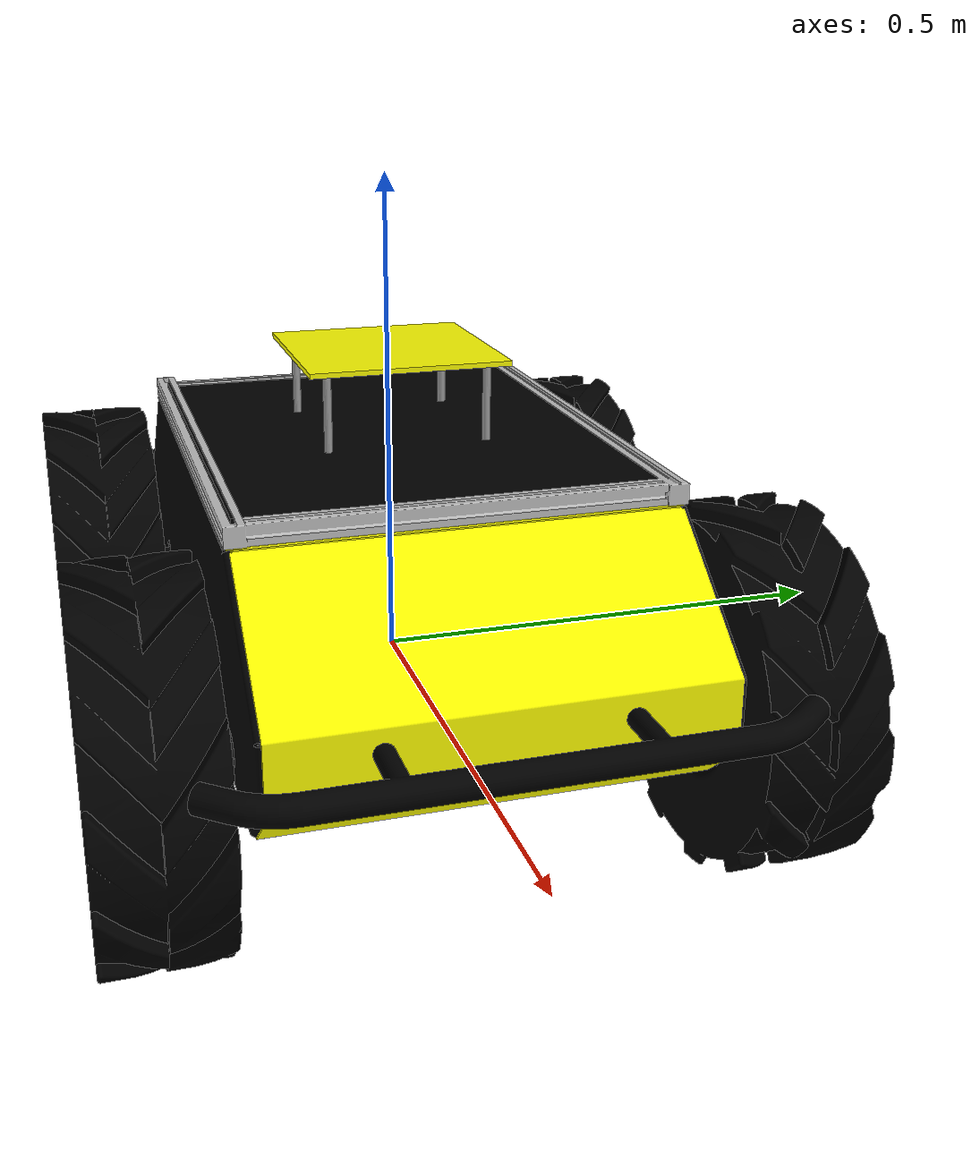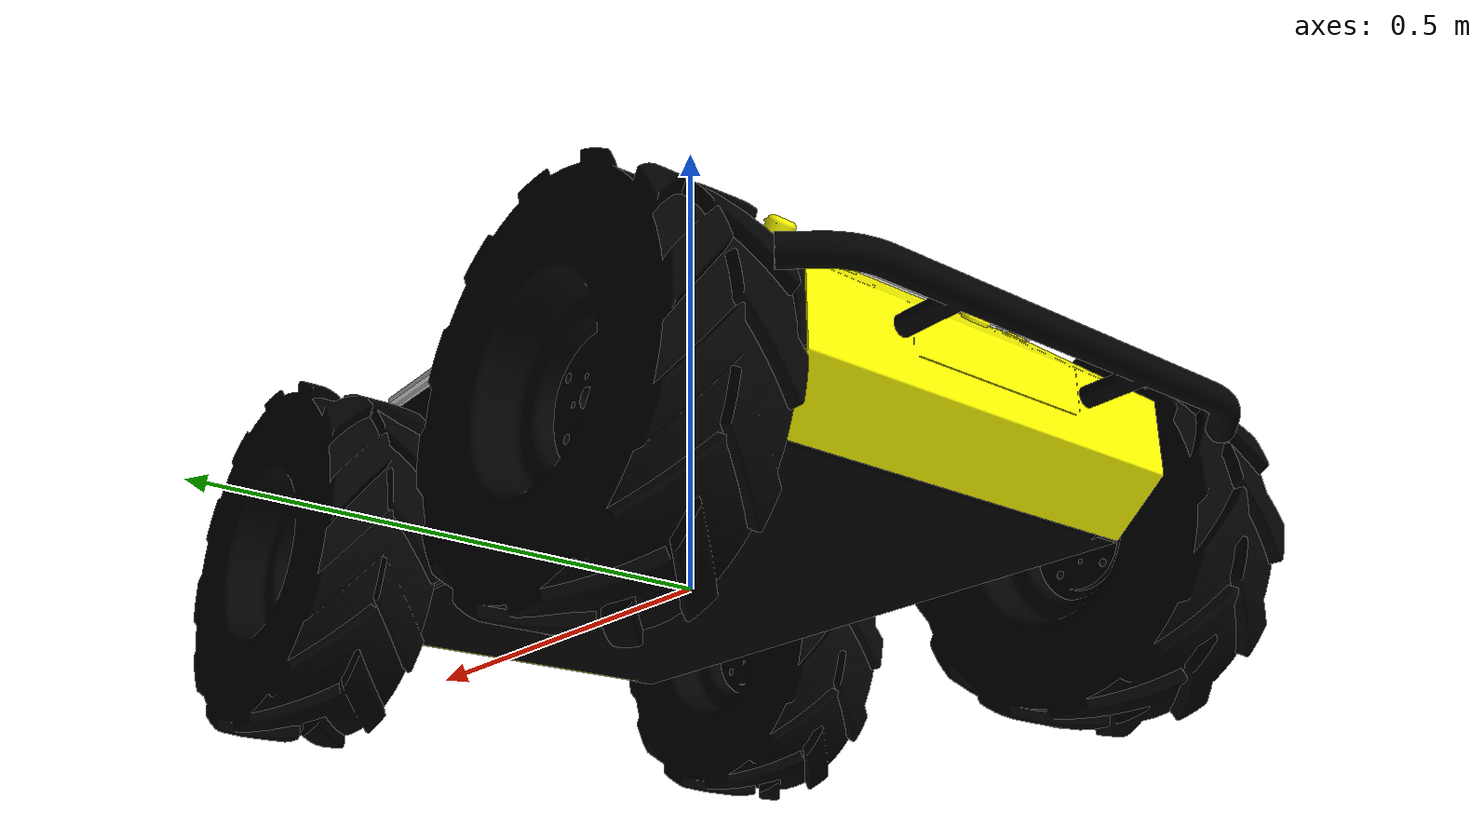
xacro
<?xml version="1.0" ?>
<robot name="r200" xmlns:xacro="http://www.ros.org/wiki/xacro">

		<!--color setting-->
    <material name="Black">
      <color rgba="0 0 0 1"/>
    </material>

    <material name="Gray">
      <color rgba="0.75 0.75 0.75 1"/>
    </material>

    <material name="White">
      <color rgba="1 1 1 0.9"/>
    </material>

    <material name="Yellow">
      <color rgba="255 255 0 0.9"/>
    </material>

		<!--base link-->
    <link name="base_link">
      <inertial>
        <mass value="0.855"/>
        <origin xyz="0 0 0"/>
        <inertia ixx="2.2" ixy="0.0" ixz="0.0" iyy="30" iyz="0.0" izz="30" />
      </inertial>
      <visual>
        <origin xyz=" 0 0 0" rpy="0 0 0"/>
         <geometry>
           <mesh filename="package://prometheus_gazebo/gazebo_models/r200_models/meshes/base_link.stl"/>
         </geometry>
         <material name="Black"/>
      </visual>
      <collision>
       <origin xyz=" 0 0 0.1" rpy="0 0 0"/>
         <geometry>
           <box size="1.0074 0.5709 0.2675"/>
         </geometry>
      </collision>
    </link>

		<gazebo reference="base_link">
			<material>Gazebo/Black</material>
   	</gazebo>

		<link name="base_footprint">
			<visual>
				<origin xyz="0 0 0" rpy="0 0 0"/>
				<geometry>
					<box size="0.001 0.001 0.001"/>
				</geometry>
			</visual>
		</link>

		<joint name="base_footprint_joint" type="fixed">
			<origin xyz="0 0 0" rpy="0 0 0"/>
			<parent link ="base_footprint"/>
			<child link="base_link"/>
		</joint>

    <!-- Top Plate -->
		<link name="top_plate">
			<visual>
        <origin xyz=" 0 0 0" rpy="0 0 0"/>
        <geometry>
          <mesh filename="package://prometheus_gazebo/gazebo_models/r200_models/meshes/top_plate.stl"/>
        </geometry>
        <material name="Yellow"/>
      </visual>
		</link>

    <gazebo reference="top_plate">
			<material>Gazebo/Yellow</material>
    </gazebo>

		<joint name="top_plate_joint" type="fixed">
			<origin xyz="0 0 0" rpy="0 0 0"/>
			<parent link="base_link"/>
			<child link="top_plate"/>
		</joint>

    <!-- Front Bumper -->
		<link name="front_bumper">
			<visual>
        <origin xyz="0.47 0 0.091" rpy="0 0 0"/>
        <geometry>
          <mesh filename="package://prometheus_gazebo/gazebo_models/r200_models/meshes/bumper.stl"/>
        </geometry>
        <material name="Black"/>
      </visual>
		</link>

    <gazebo reference="front_bumper">
      <material>Gazebo/Black</material>
    </gazebo>

		<joint name="front_bumper_joint" type="fixed">
			<origin xyz="0 0 0" rpy="0 0 0"/>
			<parent link="base_link"/>
			<child link="front_bumper"/>
		</joint>

    <!-- Top Board -->
		<link name="top_board">
			<visual>
        <origin xyz="0 0 0" rpy="0 0 0"/>
        <geometry>
          <box size="0.5 0.4 0.02"/>
        </geometry>
        <material name="Black"/>
      </visual>
		</link>

    <gazebo reference="top_board">
      <material>Gazebo/Black</material>
    </gazebo>

		<joint name="top_board_joint" type="fixed">
			<origin xyz="0 0 0.235" rpy="0 0 0"/>
			<parent link="base_link"/>
			<child link="top_board"/>
		</joint>

    <!-- Lidar Board -->
		<link name="lidar_board">
			<visual>
        <origin xyz="0 0 0" rpy="0 0 0"/>
        <geometry>
          <box size="0.2 0.2 0.005"/>
        </geometry>
        <material name="Yellow"/>
      </visual>
		</link>

    <gazebo reference="lidar_board">
      <material>Gazebo/Yellow</material>
    </gazebo>

		<joint name="lidar_board_joint" type="fixed">
			<origin xyz="0 0 0.09" rpy="0 0 0"/>
			<parent link="top_board"/>
			<child link="lidar_board"/>
		</joint>

    <!-- Lidar Pillar1 -->
		<link name="lidar_pillar1">
			<visual>
        <origin xyz="0 0 0" rpy="0 0 0"/>
        <geometry>
          <cylinder length="0.09" radius="0.004"/>
        </geometry>
        <material name="Grey"/>
      </visual>
		</link>

    <gazebo reference="lidar_pillar1">
      <material>Gazebo/Grey</material>
    </gazebo>

		<joint name="lidar_pillar1_joint" type="fixed">
			<origin xyz="0.08 0.08 -0.045" rpy="0 0 0"/>
			<parent link="lidar_board"/>
			<child link="lidar_pillar1"/>
		</joint>

    <!-- Lidar Pillar2 -->
		<link name="lidar_pillar2">
			<visual>
        <origin xyz="0 0 0" rpy="0 0 0"/>
        <geometry>
          <cylinder length="0.09" radius="0.004"/>
        </geometry>
        <material name="Grey"/>
      </visual>
		</link>

    <gazebo reference="lidar_pillar2">
      <material>Gazebo/Grey</material>
    </gazebo>

		<joint name="lidar_pillar2_joint" type="fixed">
			<origin xyz="0.08 -0.08 -0.045" rpy="0 0 0"/>
			<parent link="lidar_board"/>
			<child link="lidar_pillar2"/>
		</joint>

    <!-- Lidar Pillar3 -->
		<link name="lidar_pillar3">
			<visual>
        <origin xyz="0 0 0" rpy="0 0 0"/>
        <geometry>
          <cylinder length="0.09" radius="0.004"/>
        </geometry>
        <material name="Grey"/>
      </visual>
		</link>

    <gazebo reference="lidar_pillar3">
      <material>Gazebo/Grey</material>
    </gazebo>

		<joint name="lidar_pillar3_joint" type="fixed">
			<origin xyz="-0.08 -0.08 -0.045" rpy="0 0 0"/>
			<parent link="lidar_board"/>
			<child link="lidar_pillar3"/>
		</joint>

    <!-- Lidar Pillar4 -->
		<link name="lidar_pillar4">
			<visual>
        <origin xyz="0 0 0" rpy="0 0 0"/>
        <geometry>
          <cylinder length="0.09" radius="0.004"/>
        </geometry>
        <material name="Grey"/>
      </visual>
		</link>

    <gazebo reference="lidar_pillar4">
      <material>Gazebo/Grey</material>
    </gazebo>

		<joint name="lidar_pillar4_joint" type="fixed">
			<origin xyz="-0.08 0.08 -0.045" rpy="0 0 0"/>
			<parent link="lidar_board"/>
			<child link="lidar_pillar4"/>
		</joint>

    <!-- Rear Bumper -->
		<link name="rear_bumper">
			<visual>
        <origin xyz="-0.47 0 0.091" rpy="0 0 3.141"/>
        <geometry>
          <mesh filename="package://prometheus_gazebo/gazebo_models/r200_models/meshes/bumper.stl"/>
        </geometry>
        <material name="Black"/>
      </visual>
		</link>

    <gazebo reference="rear_bumper">
      <material>Gazebo/Black</material>
    </gazebo>

		<joint name="rear_bumper_joint" type="fixed">
			<origin xyz="0 0 0" rpy="0 0 0"/>
			<parent link="base_link"/>
			<child link="rear_bumper"/>
		</joint>

    <!-- User Rail -->
		<link name="user_rail">
			<visual>
        <origin xyz="0.272 0 0.245" rpy="0 0 0"/>
        <geometry>
          <mesh filename="package://prometheus_gazebo/gazebo_models/r200_models/meshes/user_rail.stl"/>
        </geometry>
        <material name="Gray"/>
      </visual>
		</link>

		<gazebo reference="user_rail">
      <material>Gazebo/Gray</material>
    </gazebo>

		<joint name="user_rail_joint" type="fixed">
			<origin xyz="0 0 0" rpy="0 0 0"/>
			<parent link="base_link"/>
			<child link="user_rail"/>
		</joint>

    <!-- Back Left Wheel -->
		<link name="back_left_wheel">
      <inertial>
        <mass value="0.26357"/>
        <origin xyz="0 0 0"/>
        <inertia ixx="0.05" ixy="0.0" ixz="0.0" iyy="0.05" iyz="0.0" izz="0.1" />
      </inertial>
      <visual>
        <origin xyz="0 0 0" rpy="-3.14159 0 0"/>
        <geometry>
          <mesh filename="package://prometheus_gazebo/gazebo_models/r200_models/meshes/wheel.stl"/>
        </geometry>
        <material name="Black"/>
      </visual>
      <collision>
        <origin xyz=" 0 0 0" rpy="1.5707 0 0"/>
        <geometry>
          <cylinder radius="0.17775" length="0.1143"/>
        </geometry>
      </collision>
    </link>

    <gazebo reference="back_left_wheel">
      <material>Gazebo/Gray</material>
    </gazebo>

		<joint name="back_left_joint" type="fixed">
      <origin xyz="-0.256 0.285475 0.035" rpy="0 0 0"/>
      <parent link="base_link"/>
      <child link="back_left_wheel"/>
			<axis xyz="0 1 0"/>
    </joint>

    <!-- Back Right Wheel -->
		<link name="back_right_wheel">
      <inertial>
        <mass value="0.26357"/>
        <origin xyz="0 0 0"/>
        <inertia ixx="0.05" ixy="0.0" ixz="0.0" iyy="0.05" iyz="0.0" izz="0.1" />
      </inertial>
      <visual>
        <origin xyz="0 0 0" rpy="-3.14159 0 0"/>
        <geometry>
          <mesh filename="package://prometheus_gazebo/gazebo_models/r200_models/meshes/wheel.stl"/>
        </geometry>
       	<material name="Black"/>
      </visual>
      <collision>
        <origin xyz=" 0 0 0" rpy="1.5707 0 0"/>
        <geometry>
          <cylinder radius="0.17775" length="0.1143"/>
        </geometry>
      </collision>
    </link>

    <gazebo reference="back_right_wheel">
      <material>Gazebo/Gray</material>
    </gazebo>

		<joint name="back_right_joint" type="fixed">
      <origin xyz="-0.256 -0.285475 0.035" rpy="0 0 0"/>
      <parent link="base_link"/>
      <child link="back_right_wheel"/>
			<axis xyz="0 1 0"/>
    </joint>

    <!-- Front Left Wheel -->
		<link name="front_left_wheel">
      <inertial>
        <mass value="0.26357"/>
        <origin xyz="0 0 0"/>
        <inertia ixx="0.05" ixy="0.0" ixz="0.0" iyy="0.05" iyz="0.0" izz="0.1" />
      </inertial>
      <visual>
        <origin xyz="0 0 0" rpy="-3.14159 0 0"/>
        <geometry>
          <mesh filename="package://prometheus_gazebo/gazebo_models/r200_models/meshes/wheel.stl"/>
        </geometry>
        <material name="Black"/>
      </visual>
      <collision>
        <origin xyz=" 0 0 0" rpy="1.5707 0 0"/>
        <geometry>
          <cylinder radius="0.17775" length="0.1143"/>
        </geometry>
      </collision>
    </link>

    <gazebo reference="front_left_wheel">
      <material>Gazebo/Gray</material>
    </gazebo>

		<joint name="front_left_joint" type="fixed">
      <origin xyz="0.256 0.285475 0.035" rpy="0 0 0"/>
      <parent link="base_link"/>
      <child link="front_left_wheel"/>
			<axis xyz="0 1 0"/>
    </joint>

    <!-- Front Right Wheel -->
		<link name="front_right_wheel">
      <inertial>
        <mass value="0.26357"/>
        <origin xyz="0 0 0"/>
        <inertia ixx="0.05" ixy="0.0" ixz="0.0" iyy="0.05" iyz="0.0" izz="0.1" />
     	</inertial>
      <visual>
        <origin xyz="0 0 0" rpy="-3.14159 0 0"/>
        <geometry>
          <mesh filename="package://prometheus_gazebo/gazebo_models/r200_models/meshes/wheel.stl"/>
        </geometry>
        <material name="Black"/>
      </visual>
      <collision>
        <origin xyz=" 0 0 0" rpy="-1.5707 0 0"/>
        <geometry>
          <cylinder radius="0.17775" length="0.1143"/>
        </geometry>
      </collision>
    </link>

    <gazebo reference="front_right_wheel">
      <material>Gazebo/Gray</material>
    </gazebo>

		<joint name="front_right_joint" type="fixed">
      <origin xyz="0.256 -0.285475 0.035" rpy="0 0 0"/>
      <parent link="base_link"/>
      <child link="front_right_wheel"/>
			<axis xyz="0 1 0"/>
    </joint>

		<!--IMU Link-->
		<link name="imu_link">
      <inertial>
        <mass value="0.015"/>
        <origin xyz="0 0 0"/>
        <inertia ixx="1e-05" ixy="0.0" ixz="0.0" iyy="1e-05" iyz="0.0" izz="1e-05" />
      </inertial>
    </link>

		<joint name="amovCar/imu_joint" type="fixed">
      <origin xyz="0.095 0 0.10625" rpy="0 0 0"/>
      <parent link="base_link"/>
      <child link="imu_link"/>
    </joint>

		<!--gazebo plugin-->
		<gazebo>
    	<plugin name="object_controller" filename="libgazebo_ros_planar_move.so">
      	<commandTopic>cmd_vel</commandTopic>
      	<odometryTopic>odom</odometryTopic>
      	<odometryFrame>odom</odometryFrame>
      	<odometryRate>20.0</odometryRate>
      	<robotBaseFrame>base_footprint</robotBaseFrame>
    	</plugin>
  	</gazebo>

  <gazebo reference="imu_link">
    <gravity>true</gravity>
    <sensor name="imu_sensor" type="imu">
      <always_on>true</always_on>
      <update_rate>50</update_rate>
      <visualize>true</visualize>
      <topic>imu</topic>
      <plugin filename="libgazebo_ros_imu_sensor.so" name="imu_plugin">
        <topicName>imu</topicName>
        <bodyName>base_link</bodyName>
        <updateRateHZ>50.0</updateRateHZ>
        <gaussianNoise>0.0</gaussianNoise>
        <xyzOffset> 0 0</xyzOffset>
        <rpyOffset>0 0 0</rpyOffset>
        <frameName>imu_link</frameName>
      </plugin>
      <pose>0 0 0 0 0 0</pose>
    </sensor>
  </gazebo>

</robot>
